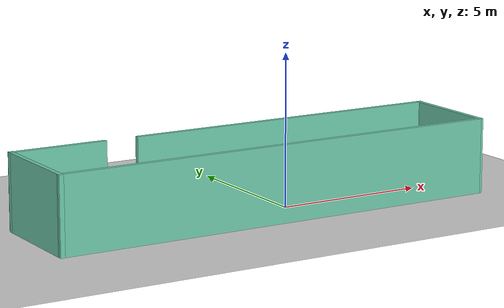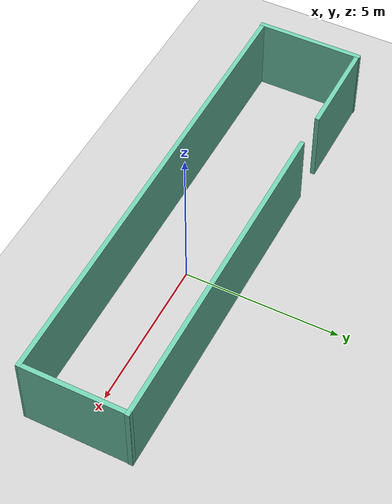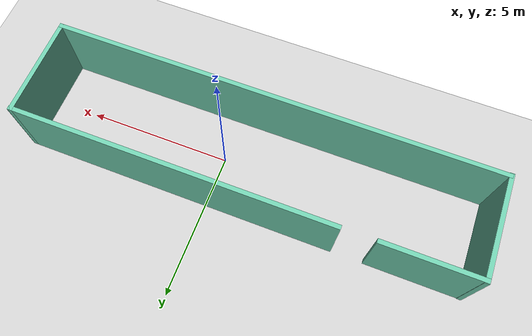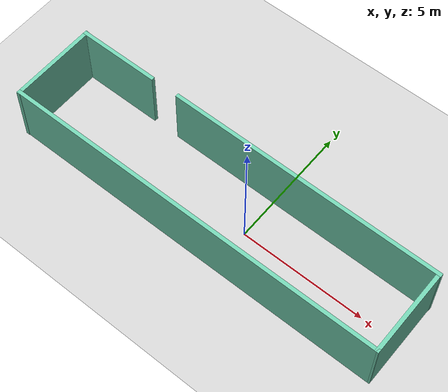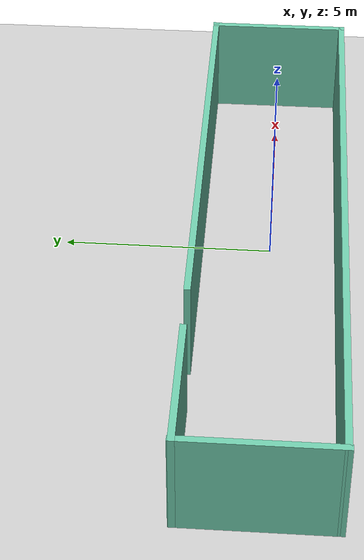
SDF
<sdf version="1.6">
 <world name="default">
  <light name="sun" type="directional">
   <pose>0 0 10 0 -0 0</pose>
   <diffuse>0.8 0.8 0.8 1</diffuse>
   <specular>0.2 0.2 0.2 1</specular>
   <attenuation>
    <range>1000</range>
    <constant>0.9</constant>
    <linear>0.01</linear>
    <quadratic>0.001</quadratic>
   </attenuation>
   <direction>-0.5 0.1 -0.9</direction>
  </light>
  <model name="ground_plane">
   <static>1</static>
   <link name="link">
    <collision name="collision">
     <geometry><plane><normal>0 0 1</normal><size>100 100</size></plane></geometry>
     <surface>
      <contact><collide_bitmask>65535</collide_bitmask></contact>
      <friction><ode><mu>100</mu><mu2>50</mu2></ode></friction>
     </surface>
    </collision>
    <visual name="visual">
     <cast_shadows>0</cast_shadows>
     <geometry><plane><normal>0 0 1</normal><size>100 100</size></plane></geometry>
     <material>
      <script><uri>file://media/materials/scripts/gazebo.material</uri><name>Gazebo/Grey</name></script>
     </material>
    </visual>
   </link>
  </model>
  <gravity>0 0 -9.8</gravity>
  <magnetic_field>6e-06 2.3e-05 -4.2e-05</magnetic_field>
  <atmosphere type="adiabatic"/>
  <physics name="default_physics" default="0" type="ode">
   <max_step_size>0.001</max_step_size>
   <real_time_factor>1</real_time_factor>
   <real_time_update_rate>1000</real_time_update_rate>
  </physics>
  <scene><ambient>0.4 0.4 0.4 1</ambient><background>0.7 0.7 0.7 1</background><shadows>1</shadows></scene>
  <audio><device>default</device></audio>
  <spherical_coordinates>
   <surface_model>EARTH_WGS84</surface_model>
   <latitude_deg>0</latitude_deg>
   <longitude_deg>0</longitude_deg>
   <elevation>0</elevation>
   <heading_deg>0</heading_deg>
  </spherical_coordinates>
  <model name="1isle">
   <pose>-1.12009 0.018874 0 0 -0 0</pose>
   <link name="Wall_0">
    <collision name="Wall_0_Collision">
     <geometry><box><size>15.3445 0.15 2.5</size></box></geometry>
     <pose>0 0 1.25 0 -0 0</pose>
    </collision>
    <visual name="Wall_0_Visual">
     <pose>0 0 1.25 0 -0 0</pose>
     <geometry><box><size>15.3445 0.15 2.5</size></box></geometry>
     <material>
      <script><uri>file://media/materials/scripts/gazebo.material</uri><name>Gazebo/Grey</name></script>
      <ambient>0.435294 0.796078 0.67451 1</ambient>
     </material>
     <meta><layer>0</layer></meta>
    </visual>
    <pose>-0.007473 -1.67318 0 0 -0 0.00123</pose>
   </link>
   <link name="Wall_14">
    <collision name="Wall_14_Collision">
     <geometry><box><size>11 0.15 2.5</size></box></geometry>
     <pose>0 0 1.25 0 -0 0</pose>
    </collision>
    <visual name="Wall_14_Visual">
     <pose>0 0 1.25 0 -0 0</pose>
     <geometry><box><size>11 0.15 2.5</size></box></geometry>
     <material>
      <script><uri>file://media/materials/scripts/gazebo.material</uri><name>Gazebo/Grey</name></script>
      <ambient>0.435294 0.796078 0.67451 1</ambient>
     </material>
     <meta><layer>0</layer></meta>
    </visual>
    <pose>2.17983 1.68616 0 0 -0 3.14159</pose>
   </link>
   <link name="Wall_16">
    <collision name="Wall_16_Collision">
     <geometry><box><size>3.28008 0.15 2.5</size></box></geometry>
     <pose>0 0 1.25 0 -0 0</pose>
    </collision>
    <visual name="Wall_16_Visual">
     <pose>0 0 1.25 0 -0 0</pose>
     <geometry><box><size>3.28008 0.15 2.5</size></box></geometry>
     <material>
      <script><uri>file://media/materials/scripts/gazebo.material</uri><name>Gazebo/Grey</name></script>
      <ambient>0.435294 0.796078 0.67451 1</ambient>
     </material>
     <meta><layer>0</layer></meta>
    </visual>
    <pose>-6.0397 1.68252 0 0 -0 0</pose>
   </link>
   <link name="Wall_4">
    <collision name="Wall_4_Collision">
     <geometry><box><size>3.5 0.15 2.5</size></box></geometry>
     <pose>0 0 1.25 0 -0 0</pose>
    </collision>
    <visual name="Wall_4_Visual">
     <pose>0 0 1.25 0 -0 0</pose>
     <geometry><box><size>3.5 0.15 2.5</size></box></geometry>
     <material>
      <script><uri>file://media/materials/scripts/gazebo.material</uri><name>Gazebo/Grey</name></script>
      <ambient>0.435294 0.796078 0.67451 1</ambient>
     </material>
     <meta><layer>0</layer></meta>
    </visual>
    <pose>7.58979 0.011163 0 0 -0 1.5708</pose>
   </link>
   <link name="Wall_6">
    <collision name="Wall_6_Collision">
     <geometry><box><size>3.54511 0.15 2.5</size></box></geometry>
     <pose>0 0 1.25 0 -0 0</pose>
    </collision>
    <visual name="Wall_6_Visual">
     <pose>0 0 1.25 0 -0 0</pose>
     <geometry><box><size>3.54511 0.15 2.5</size></box></geometry>
     <material>
      <script><uri>file://media/materials/scripts/gazebo.material</uri><name>Gazebo/Grey</name></script>
      <ambient>0.435294 0.796078 0.67451 1</ambient>
     </material>
     <meta><layer>0</layer></meta>
    </visual>
    <pose>-7.60473 -0 0 0 -0 -1.5708</pose>
   </link>
   <static>1</static>
  </model>
 </world>
</sdf>
